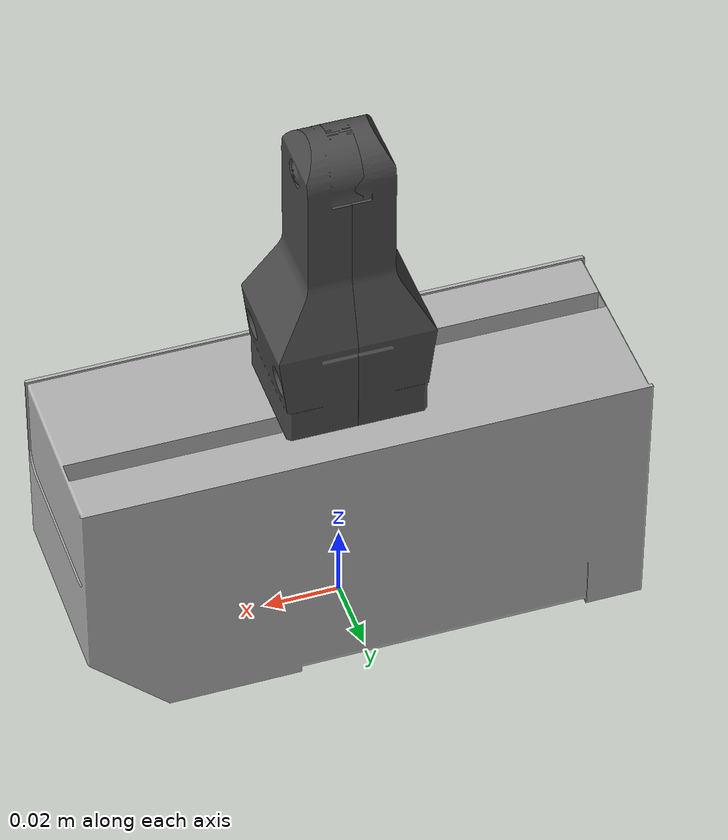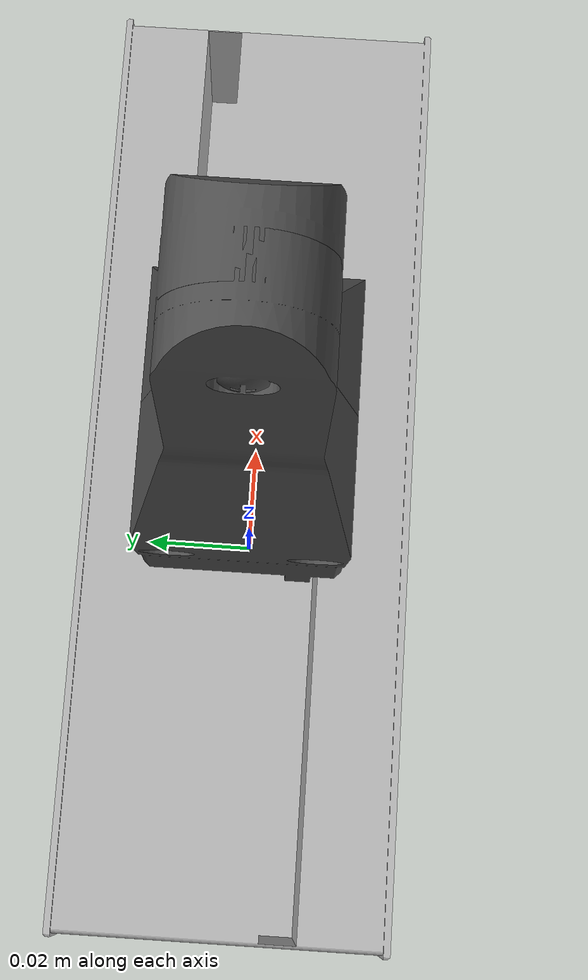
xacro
<?xml version="1.0"?>
<robot xmlns:xacro="http://www.ros.org/wiki/xacro" name="example_robot">

  <!-- Create a root link -->
  <link name="world"/>

  <!-- Instantiate a wsg50 -->
  <include filename="$(find wsg_description)/models/wsg50_110.xacro"/>
  <wsg50_110 prefix="" />

  <!-- Attach the gripper to the root link -->
  <joint name="gripper_joint" type="fixed">
    <parent link="world"/>
    <child link="gripper_link"/>
    <origin xyz="0 0 0" rpy="-1.570796 0 0"/>
  </joint>
</robot>

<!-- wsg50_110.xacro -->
<robot xmlns:xacro="http://www.ros.org/wiki/xacro" name="wsg50">
  <macro name="wsg50_110" params="prefix">

    <!-- Materials -->
    <material name="wsg50_Gray">
      <color rgba="0.7 0.7 0.7 1.0"/>
    </material>
    <material name="wsg50_DarkGray">
      <color rgba="0.3 0.3 0.3 1.0"/>
    </material>

    <!-- Gripper Body -->
    <link name="${prefix}gripper_link">
      <visual>
        <origin xyz="0 0 0" rpy="0 0 0"/>
        <geometry>
          <mesh filename="package://wsg_description/meshes/wsg50_110.stl"
            scale="0.001 0.001 0.001"/>
        </geometry>
        <material name="wsg50_Gray"/>
      </visual>
    </link>

    <!-- Fingers -->
    <link name="${prefix}thumb_link">
      <visual>
        <origin xyz="0 0 0" rpy="0 0 0"/>
        <geometry>
          <mesh filename="package://wsg_description/meshes/wsg_f.stl"
            scale="0.001 0.001 0.001"/>
        </geometry>
        <material name="wsg50_DarkGray"/>
      </visual>
    </link>
    <link name="${prefix}index_link">
      <visual>
        <origin xyz="0 0 0" rpy="0 0 0"/>
        <geometry>
          <mesh filename="package://wsg_description/meshes/wsg_f.stl"
            scale="0.001 0.001 0.001"/>
        </geometry>
        <material name="wsg50_DarkGray"/>
      </visual>
    </link>

    <joint name="${prefix}thumb_joint" type="prismatic">
      <limit effort="1000.0" lower="0.0" upper="0.055" velocity="0.5"/>
      <parent link="${prefix}gripper_link"/>
      <child link="${prefix}thumb_link"/>
      <origin xyz="0 -0.096 0" rpy="3.141 0 0"/>
    </joint>

    <joint name="${prefix}index_joint" type="prismatic">
      <limit effort="1000.0" lower="0.0" upper="0.055" velocity="0.5"/>
      <parent link="${prefix}gripper_link"/>
      <child link="${prefix}index_link"/>
      <origin xyz="0 -0.096 0" rpy="3.141 3.141 0"/>
    </joint>

  </macro>

</robot>
